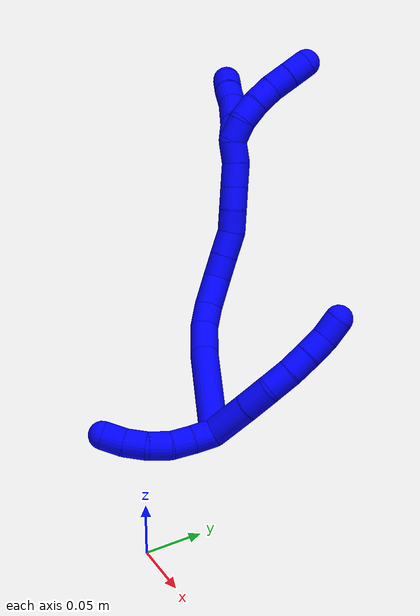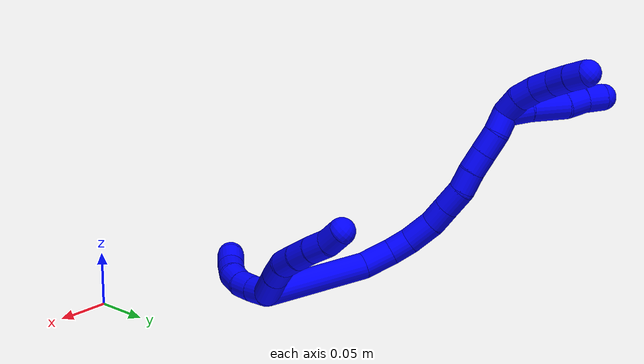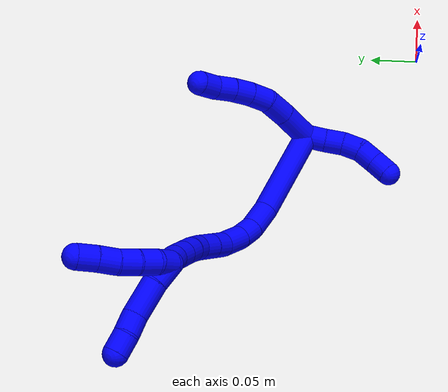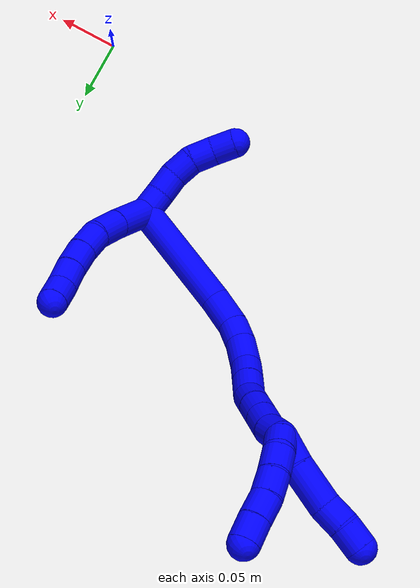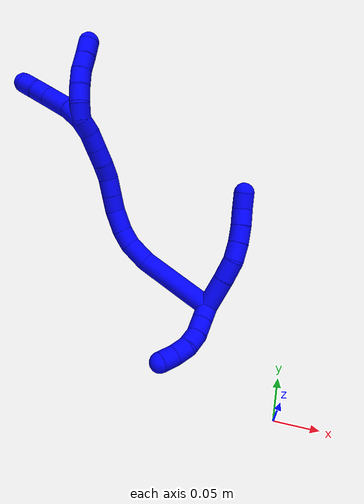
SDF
<sdf version="1.7">
 <world name="default">
  <model name="1">
   <static>0</static>
   <link name="1">
    <collision name="collision-cylinder-e_1_2_8">
     <pose>0.01099 0.010797 0.012185 -0.725068 0.593794 -0.231052</pose>
     <geometry><cylinder><radius>0.0125</radius><length>0.039284</length></cylinder></geometry>
     <surface>
      <friction><ode><mu>1.16</mu><mu2>1.16</mu2><slip1>0</slip1><slip2>0</slip2></ode></friction>
      <contact><ode><kp>1e+06</kp><kd>1</kd><max_vel>0</max_vel><min_depth>0.001</min_depth></ode></contact>
     </surface>
    </collision>
    <visual name="visual-cylinder-e_1_2_8">
     <pose>0.01099 0.010797 0.012185 -0.725068 0.593794 -0.231052</pose>
     <geometry><cylinder><radius>0.0125</radius><length>0.039284</length></cylinder></geometry>
     <material><ambient>0 0 1 1</ambient></material>
    </visual>
    <collision name="collision-cylinder-e_2_8_9">
     <pose>0.02879 0.028979 0.033014 -0.707017 0.539625 -0.203399</pose>
     <geometry><cylinder><radius>0.0125</radius><length>0.026507</length></cylinder></geometry>
     <surface>
      <friction><ode><mu>1.16</mu><mu2>1.16</mu2><slip1>0</slip1><slip2>0</slip2></ode></friction>
      <contact><ode><kp>1e+06</kp><kd>1</kd><max_vel>0</max_vel><min_depth>0.001</min_depth></ode></contact>
     </surface>
    </collision>
    <visual name="visual-cylinder-e_2_8_9">
     <pose>0.02879 0.028979 0.033014 -0.707017 0.539625 -0.203399</pose>
     <geometry><cylinder><radius>0.0125</radius><length>0.026507</length></cylinder></geometry>
     <material><ambient>0 0 1 1</ambient></material>
    </visual>
    <collision name="collision-cylinder-e_3_9_10">
     <pose>0.038184 0.043414 0.049789 -0.714373 0.235681 -0.088307</pose>
     <geometry><cylinder><radius>0.0125</radius><length>0.022133</length></cylinder></geometry>
     <surface>
      <friction><ode><mu>1.16</mu><mu2>1.16</mu2><slip1>0</slip1><slip2>0</slip2></ode></friction>
      <contact><ode><kp>1e+06</kp><kd>1</kd><max_vel>0</max_vel><min_depth>0.001</min_depth></ode></contact>
     </surface>
    </collision>
    <visual name="visual-cylinder-e_3_9_10">
     <pose>0.038184 0.043414 0.049789 -0.714373 0.235681 -0.088307</pose>
     <geometry><cylinder><radius>0.0125</radius><length>0.022133</length></cylinder></geometry>
     <material><ambient>0 0 1 1</ambient></material>
    </visual>
    <collision name="collision-cylinder-e_4_10_11">
     <pose>0.042317 0.056634 0.066259 -0.636895 0.14825 -0.048953</pose>
     <geometry><cylinder><radius>0.0125</radius><length>0.020981</length></cylinder></geometry>
     <surface>
      <friction><ode><mu>1.16</mu><mu2>1.16</mu2><slip1>0</slip1><slip2>0</slip2></ode></friction>
      <contact><ode><kp>1e+06</kp><kd>1</kd><max_vel>0</max_vel><min_depth>0.001</min_depth></ode></contact>
     </surface>
    </collision>
    <visual name="visual-cylinder-e_4_10_11">
     <pose>0.042317 0.056634 0.066259 -0.636895 0.14825 -0.048953</pose>
     <geometry><cylinder><radius>0.0125</radius><length>0.020981</length></cylinder></geometry>
     <material><ambient>0 0 1 1</ambient></material>
    </visual>
    <collision name="collision-cylinder-e_5_11_12">
     <pose>0.044501 0.068709 0.08309 -0.607726 0.061271 -0.019218</pose>
     <geometry><cylinder><radius>0.0125</radius><length>0.020721</length></cylinder></geometry>
     <surface>
      <friction><ode><mu>1.16</mu><mu2>1.16</mu2><slip1>0</slip1><slip2>0</slip2></ode></friction>
      <contact><ode><kp>1e+06</kp><kd>1</kd><max_vel>0</max_vel><min_depth>0.001</min_depth></ode></contact>
     </surface>
    </collision>
    <visual name="visual-cylinder-e_5_11_12">
     <pose>0.044501 0.068709 0.08309 -0.607726 0.061271 -0.019218</pose>
     <geometry><cylinder><radius>0.0125</radius><length>0.020721</length></cylinder></geometry>
     <material><ambient>0 0 1 1</ambient></material>
    </visual>
    <collision name="collision-cylinder-e_6_12_6">
     <pose>0.047618 0.078986 0.100439 -0.458438 0.246212 -0.057722</pose>
     <geometry><cylinder><radius>0.0125</radius><length>0.020375</length></cylinder></geometry>
     <surface>
      <friction><ode><mu>1.16</mu><mu2>1.16</mu2><slip1>0</slip1><slip2>0</slip2></ode></friction>
      <contact><ode><kp>1e+06</kp><kd>1</kd><max_vel>0</max_vel><min_depth>0.001</min_depth></ode></contact>
     </surface>
    </collision>
    <visual name="visual-cylinder-e_6_12_6">
     <pose>0.047618 0.078986 0.100439 -0.458438 0.246212 -0.057722</pose>
     <geometry><cylinder><radius>0.0125</radius><length>0.020375</length></cylinder></geometry>
     <material><ambient>0 0 1 1</ambient></material>
    </visual>
    <collision name="collision-cylinder-e_1_2_13">
     <pose>0.000422 -0.008786 -0.004757 2.067 0.042206 0.070825</pose>
     <geometry><cylinder><radius>0.0125</radius><length>0.02</length></cylinder></geometry>
     <surface>
      <friction><ode><mu>1.16</mu><mu2>1.16</mu2><slip1>0</slip1><slip2>0</slip2></ode></friction>
      <contact><ode><kp>1e+06</kp><kd>1</kd><max_vel>0</max_vel><min_depth>0.001</min_depth></ode></contact>
     </surface>
    </collision>
    <visual name="visual-cylinder-e_1_2_13">
     <pose>0.000422 -0.008786 -0.004757 2.067 0.042206 0.070825</pose>
     <geometry><cylinder><radius>0.0125</radius><length>0.02</length></cylinder></geometry>
     <material><ambient>0 0 1 1</ambient></material>
    </visual>
    <collision name="collision-cylinder-e_2_13_14">
     <pose>0.001968 -0.026555 -0.013762 2.01265 0.112602 0.177551</pose>
     <geometry><cylinder><radius>0.0125</radius><length>0.02</length></cylinder></geometry>
     <surface>
      <friction><ode><mu>1.16</mu><mu2>1.16</mu2><slip1>0</slip1><slip2>0</slip2></ode></friction>
      <contact><ode><kp>1e+06</kp><kd>1</kd><max_vel>0</max_vel><min_depth>0.001</min_depth></ode></contact>
     </surface>
    </collision>
    <visual name="visual-cylinder-e_2_13_14">
     <pose>0.001968 -0.026555 -0.013762 2.01265 0.112602 0.177551</pose>
     <geometry><cylinder><radius>0.0125</radius><length>0.02</length></cylinder></geometry>
     <material><ambient>0 0 1 1</ambient></material>
    </visual>
    <collision name="collision-cylinder-e_3_14_15">
     <pose>0.003328 -0.045348 -0.01993 1.76388 0.02372 0.028807</pose>
     <geometry><cylinder><radius>0.0125</radius><length>0.02</length></cylinder></geometry>
     <surface>
      <friction><ode><mu>1.16</mu><mu2>1.16</mu2><slip1>0</slip1><slip2>0</slip2></ode></friction>
      <contact><ode><kp>1e+06</kp><kd>1</kd><max_vel>0</max_vel><min_depth>0.001</min_depth></ode></contact>
     </surface>
    </collision>
    <visual name="visual-cylinder-e_3_14_15">
     <pose>0.003328 -0.045348 -0.01993 1.76388 0.02372 0.028807</pose>
     <geometry><cylinder><radius>0.0125</radius><length>0.02</length></cylinder></geometry>
     <material><ambient>0 0 1 1</ambient></material>
    </visual>
    <collision name="collision-cylinder-e_4_15_16">
     <pose>0.001082 -0.064846 -0.021939 1.58024 -0.250962 -0.253319</pose>
     <geometry><cylinder><radius>0.0125</radius><length>0.02</length></cylinder></geometry>
     <surface>
      <friction><ode><mu>1.16</mu><mu2>1.16</mu2><slip1>0</slip1><slip2>0</slip2></ode></friction>
      <contact><ode><kp>1e+06</kp><kd>1</kd><max_vel>0</max_vel><min_depth>0.001</min_depth></ode></contact>
     </surface>
    </collision>
    <visual name="visual-cylinder-e_4_15_16">
     <pose>0.001082 -0.064846 -0.021939 1.58024 -0.250962 -0.253319</pose>
     <geometry><cylinder><radius>0.0125</radius><length>0.02</length></cylinder></geometry>
     <material><ambient>0 0 1 1</ambient></material>
    </visual>
    <collision name="collision-cylinder-e_5_16_5">
     <pose>-0.003138 -0.084238 -0.020361 1.40037 -0.17452 -0.147159</pose>
     <geometry><cylinder><radius>0.0125</radius><length>0.02</length></cylinder></geometry>
     <surface>
      <friction><ode><mu>1.16</mu><mu2>1.16</mu2><slip1>0</slip1><slip2>0</slip2></ode></friction>
      <contact><ode><kp>1e+06</kp><kd>1</kd><max_vel>0</max_vel><min_depth>0.001</min_depth></ode></contact>
     </surface>
    </collision>
    <visual name="visual-cylinder-e_5_16_5">
     <pose>-0.003138 -0.084238 -0.020361 1.40037 -0.17452 -0.147159</pose>
     <geometry><cylinder><radius>0.0125</radius><length>0.02</length></cylinder></geometry>
     <material><ambient>0 0 1 1</ambient></material>
    </visual>
    <collision name="collision-cylinder-e_1_2_17">
     <pose>-0.031256 -0.005661 0.03668 0.15312 -0.699933 -0.055982</pose>
     <geometry><cylinder><radius>0.0125</radius><length>0.097045</length></cylinder></geometry>
     <surface>
      <friction><ode><mu>1.16</mu><mu2>1.16</mu2><slip1>0</slip1><slip2>0</slip2></ode></friction>
      <contact><ode><kp>1e+06</kp><kd>1</kd><max_vel>0</max_vel><min_depth>0.001</min_depth></ode></contact>
     </surface>
    </collision>
    <visual name="visual-cylinder-e_1_2_17">
     <pose>-0.031256 -0.005661 0.03668 0.15312 -0.699933 -0.055982</pose>
     <geometry><cylinder><radius>0.0125</radius><length>0.097045</length></cylinder></geometry>
     <material><ambient>0 0 1 1</ambient></material>
    </visual>
    <collision name="collision-cylinder-e_2_17_18">
     <pose>-0.068812 -0.01266 0.086407 0.10221 -0.447725 -0.02329</pose>
     <geometry><cylinder><radius>0.0125</radius><length>0.0291</length></cylinder></geometry>
     <surface>
      <friction><ode><mu>1.16</mu><mu2>1.16</mu2><slip1>0</slip1><slip2>0</slip2></ode></friction>
      <contact><ode><kp>1e+06</kp><kd>1</kd><max_vel>0</max_vel><min_depth>0.001</min_depth></ode></contact>
     </surface>
    </collision>
    <visual name="visual-cylinder-e_2_17_18">
     <pose>-0.068812 -0.01266 0.086407 0.10221 -0.447725 -0.02329</pose>
     <geometry><cylinder><radius>0.0125</radius><length>0.0291</length></cylinder></geometry>
     <material><ambient>0 0 1 1</ambient></material>
    </visual>
    <collision name="collision-cylinder-e_3_18_19">
     <pose>-0.077564 -0.013414 0.109363 -0.058833 -0.242262 0.007164</pose>
     <geometry><cylinder><radius>0.0125</radius><length>0.020449</length></cylinder></geometry>
     <surface>
      <friction><ode><mu>1.16</mu><mu2>1.16</mu2><slip1>0</slip1><slip2>0</slip2></ode></friction>
      <contact><ode><kp>1e+06</kp><kd>1</kd><max_vel>0</max_vel><min_depth>0.001</min_depth></ode></contact>
     </surface>
    </collision>
    <visual name="visual-cylinder-e_3_18_19">
     <pose>-0.077564 -0.013414 0.109363 -0.058833 -0.242262 0.007164</pose>
     <geometry><cylinder><radius>0.0125</radius><length>0.020449</length></cylinder></geometry>
     <material><ambient>0 0 1 1</ambient></material>
    </visual>
    <collision name="collision-cylinder-e_4_19_20">
     <pose>-0.080627 -0.011053 0.132975 -0.128996 -0.044151 0.002852</pose>
     <geometry><cylinder><radius>0.0125</radius><length>0.027664</length></cylinder></geometry>
     <surface>
      <friction><ode><mu>1.16</mu><mu2>1.16</mu2><slip1>0</slip1><slip2>0</slip2></ode></friction>
      <contact><ode><kp>1e+06</kp><kd>1</kd><max_vel>0</max_vel><min_depth>0.001</min_depth></ode></contact>
     </surface>
    </collision>
    <visual name="visual-cylinder-e_4_19_20">
     <pose>-0.080627 -0.011053 0.132975 -0.128996 -0.044151 0.002852</pose>
     <geometry><cylinder><radius>0.0125</radius><length>0.027664</length></cylinder></geometry>
     <material><ambient>0 0 1 1</ambient></material>
    </visual>
    <collision name="collision-cylinder-e_5_20_21">
     <pose>-0.079345 -0.008122 0.156788 -0.113622 0.18393 -0.01049</pose>
     <geometry><cylinder><radius>0.0125</radius><length>0.020698</length></cylinder></geometry>
     <surface>
      <friction><ode><mu>1.16</mu><mu2>1.16</mu2><slip1>0</slip1><slip2>0</slip2></ode></friction>
      <contact><ode><kp>1e+06</kp><kd>1</kd><max_vel>0</max_vel><min_depth>0.001</min_depth></ode></contact>
     </surface>
    </collision>
    <visual name="visual-cylinder-e_5_20_21">
     <pose>-0.079345 -0.008122 0.156788 -0.113622 0.18393 -0.01049</pose>
     <geometry><cylinder><radius>0.0125</radius><length>0.020698</length></cylinder></geometry>
     <material><ambient>0 0 1 1</ambient></material>
    </visual>
    <collision name="collision-cylinder-e_6_21_22">
     <pose>-0.075441 -0.005575 0.177951 -0.12541 0.178593 -0.011243</pose>
     <geometry><cylinder><radius>0.0125</radius><length>0.022643</length></cylinder></geometry>
     <surface>
      <friction><ode><mu>1.16</mu><mu2>1.16</mu2><slip1>0</slip1><slip2>0</slip2></ode></friction>
      <contact><ode><kp>1e+06</kp><kd>1</kd><max_vel>0</max_vel><min_depth>0.001</min_depth></ode></contact>
     </surface>
    </collision>
    <visual name="visual-cylinder-e_6_21_22">
     <pose>-0.075441 -0.005575 0.177951 -0.12541 0.178593 -0.011243</pose>
     <geometry><cylinder><radius>0.0125</radius><length>0.022643</length></cylinder></geometry>
     <material><ambient>0 0 1 1</ambient></material>
    </visual>
    <collision name="collision-cylinder-e_7_22_23">
     <pose>-0.070546 -0.00558 0.198652 0.144024 0.287605 0.02089</pose>
     <geometry><cylinder><radius>0.0125</radius><length>0.020333</length></cylinder></geometry>
     <surface>
      <friction><ode><mu>1.16</mu><mu2>1.16</mu2><slip1>0</slip1><slip2>0</slip2></ode></friction>
      <contact><ode><kp>1e+06</kp><kd>1</kd><max_vel>0</max_vel><min_depth>0.001</min_depth></ode></contact>
     </surface>
    </collision>
    <visual name="visual-cylinder-e_7_22_23">
     <pose>-0.070546 -0.00558 0.198652 0.144024 0.287605 0.02089</pose>
     <geometry><cylinder><radius>0.0125</radius><length>0.020333</length></cylinder></geometry>
     <material><ambient>0 0 1 1</ambient></material>
    </visual>
    <collision name="collision-cylinder-e_8_23_24">
     <pose>-0.06583 -0.00829 0.218251 0.130957 0.180485 0.011867</pose>
     <geometry><cylinder><radius>0.0125</radius><length>0.020405</length></cylinder></geometry>
     <surface>
      <friction><ode><mu>1.16</mu><mu2>1.16</mu2><slip1>0</slip1><slip2>0</slip2></ode></friction>
      <contact><ode><kp>1e+06</kp><kd>1</kd><max_vel>0</max_vel><min_depth>0.001</min_depth></ode></contact>
     </surface>
    </collision>
    <visual name="visual-cylinder-e_8_23_24">
     <pose>-0.06583 -0.00829 0.218251 0.130957 0.180485 0.011867</pose>
     <geometry><cylinder><radius>0.0125</radius><length>0.020405</length></cylinder></geometry>
     <material><ambient>0 0 1 1</ambient></material>
    </visual>
    <collision name="collision-cylinder-e_9_24_25">
     <pose>-0.062057 -0.010927 0.238758 0.124964 0.180559 0.011327</pose>
     <geometry><cylinder><radius>0.0125</radius><length>0.02163</length></cylinder></geometry>
     <surface>
      <friction><ode><mu>1.16</mu><mu2>1.16</mu2><slip1>0</slip1><slip2>0</slip2></ode></friction>
      <contact><ode><kp>1e+06</kp><kd>1</kd><max_vel>0</max_vel><min_depth>0.001</min_depth></ode></contact>
     </surface>
    </collision>
    <visual name="visual-cylinder-e_9_24_25">
     <pose>-0.062057 -0.010927 0.238758 0.124964 0.180559 0.011327</pose>
     <geometry><cylinder><radius>0.0125</radius><length>0.02163</length></cylinder></geometry>
     <material><ambient>0 0 1 1</ambient></material>
    </visual>
    <collision name="collision-cylinder-e_10_25_1">
     <pose>-0.058136 -0.015628 0.258536 0.35087 0.19884 0.035359</pose>
     <geometry><cylinder><radius>0.0125</radius><length>0.020034</length></cylinder></geometry>
     <surface>
      <friction><ode><mu>1.16</mu><mu2>1.16</mu2><slip1>0</slip1><slip2>0</slip2></ode></friction>
      <contact><ode><kp>1e+06</kp><kd>1</kd><max_vel>0</max_vel><min_depth>0.001</min_depth></ode></contact>
     </surface>
    </collision>
    <visual name="visual-cylinder-e_10_25_1">
     <pose>-0.058136 -0.015628 0.258536 0.35087 0.19884 0.035359</pose>
     <geometry><cylinder><radius>0.0125</radius><length>0.020034</length></cylinder></geometry>
     <material><ambient>0 0 1 1</ambient></material>
    </visual>
    <collision name="collision-cylinder-e_1_1_26">
     <pose>-0.063693 -0.018529 0.276853 -0.052066 -0.691193 0.01875</pose>
     <geometry><cylinder><radius>0.0125</radius><length>0.023644</length></cylinder></geometry>
     <surface>
      <friction><ode><mu>1.16</mu><mu2>1.16</mu2><slip1>0</slip1><slip2>0</slip2></ode></friction>
      <contact><ode><kp>1e+06</kp><kd>1</kd><max_vel>0</max_vel><min_depth>0.001</min_depth></ode></contact>
     </surface>
    </collision>
    <visual name="visual-cylinder-e_1_1_26">
     <pose>-0.063693 -0.018529 0.276853 -0.052066 -0.691193 0.01875</pose>
     <geometry><cylinder><radius>0.0125</radius><length>0.023644</length></cylinder></geometry>
     <material><ambient>0 0 1 1</ambient></material>
    </visual>
    <collision name="collision-cylinder-e_2_26_27">
     <pose>-0.084809 -0.018726 0.29795 0.055852 -0.84629 -0.025158</pose>
     <geometry><cylinder><radius>0.0125</radius><length>0.036271</length></cylinder></geometry>
     <surface>
      <friction><ode><mu>1.16</mu><mu2>1.16</mu2><slip1>0</slip1><slip2>0</slip2></ode></friction>
      <contact><ode><kp>1e+06</kp><kd>1</kd><max_vel>0</max_vel><min_depth>0.001</min_depth></ode></contact>
     </surface>
    </collision>
    <visual name="visual-cylinder-e_2_26_27">
     <pose>-0.084809 -0.018726 0.29795 0.055852 -0.84629 -0.025158</pose>
     <geometry><cylinder><radius>0.0125</radius><length>0.036271</length></cylinder></geometry>
     <material><ambient>0 0 1 1</ambient></material>
    </visual>
    <collision name="collision-cylinder-e_3_27_28">
     <pose>-0.104733 -0.021557 0.317425 0.281279 -0.684067 -0.100723</pose>
     <geometry><cylinder><radius>0.0125</radius><length>0.020077</length></cylinder></geometry>
     <surface>
      <friction><ode><mu>1.16</mu><mu2>1.16</mu2><slip1>0</slip1><slip2>0</slip2></ode></friction>
      <contact><ode><kp>1e+06</kp><kd>1</kd><max_vel>0</max_vel><min_depth>0.001</min_depth></ode></contact>
     </surface>
    </collision>
    <visual name="visual-cylinder-e_3_27_28">
     <pose>-0.104733 -0.021557 0.317425 0.281279 -0.684067 -0.100723</pose>
     <geometry><cylinder><radius>0.0125</radius><length>0.020077</length></cylinder></geometry>
     <material><ambient>0 0 1 1</ambient></material>
    </visual>
    <collision name="collision-cylinder-e_4_28_4">
     <pose>-0.118393 -0.024524 0.331675 0.118702 -0.82021 -0.051655</pose>
     <geometry><cylinder><radius>0.0125</radius><length>0.020009</length></cylinder></geometry>
     <surface>
      <friction><ode><mu>1.16</mu><mu2>1.16</mu2><slip1>0</slip1><slip2>0</slip2></ode></friction>
      <contact><ode><kp>1e+06</kp><kd>1</kd><max_vel>0</max_vel><min_depth>0.001</min_depth></ode></contact>
     </surface>
    </collision>
    <visual name="visual-cylinder-e_4_28_4">
     <pose>-0.118393 -0.024524 0.331675 0.118702 -0.82021 -0.051655</pose>
     <geometry><cylinder><radius>0.0125</radius><length>0.020009</length></cylinder></geometry>
     <material><ambient>0 0 1 1</ambient></material>
    </visual>
    <collision name="collision-cylinder-e_1_1_29">
     <pose>-0.053554 -0.016558 0.277098 -0.256031 0.263327 -0.034089</pose>
     <geometry><cylinder><radius>0.0125</radius><length>0.02</length></cylinder></geometry>
     <surface>
      <friction><ode><mu>1.16</mu><mu2>1.16</mu2><slip1>0</slip1><slip2>0</slip2></ode></friction>
      <contact><ode><kp>1e+06</kp><kd>1</kd><max_vel>0</max_vel><min_depth>0.001</min_depth></ode></contact>
     </surface>
    </collision>
    <visual name="visual-cylinder-e_1_1_29">
     <pose>-0.053554 -0.016558 0.277098 -0.256031 0.263327 -0.034089</pose>
     <geometry><cylinder><radius>0.0125</radius><length>0.02</length></cylinder></geometry>
     <material><ambient>0 0 1 1</ambient></material>
    </visual>
    <collision name="collision-cylinder-e_2_29_30">
     <pose>-0.050459 -0.009434 0.295262 -0.487545 0.049296 -0.012263</pose>
     <geometry><cylinder><radius>0.0125</radius><length>0.02</length></cylinder></geometry>
     <surface>
      <friction><ode><mu>1.16</mu><mu2>1.16</mu2><slip1>0</slip1><slip2>0</slip2></ode></friction>
      <contact><ode><kp>1e+06</kp><kd>1</kd><max_vel>0</max_vel><min_depth>0.001</min_depth></ode></contact>
     </surface>
    </collision>
    <visual name="visual-cylinder-e_2_29_30">
     <pose>-0.050459 -0.009434 0.295262 -0.487545 0.049296 -0.012263</pose>
     <geometry><cylinder><radius>0.0125</radius><length>0.02</length></cylinder></geometry>
     <material><ambient>0 0 1 1</ambient></material>
    </visual>
    <collision name="collision-cylinder-e_3_30_31">
     <pose>-0.0501 0.001052 0.312226 -0.619659 -0.013375 0.004282</pose>
     <geometry><cylinder><radius>0.0125</radius><length>0.02</length></cylinder></geometry>
     <surface>
      <friction><ode><mu>1.16</mu><mu2>1.16</mu2><slip1>0</slip1><slip2>0</slip2></ode></friction>
      <contact><ode><kp>1e+06</kp><kd>1</kd><max_vel>0</max_vel><min_depth>0.001</min_depth></ode></contact>
     </surface>
    </collision>
    <visual name="visual-cylinder-e_3_30_31">
     <pose>-0.0501 0.001052 0.312226 -0.619659 -0.013375 0.004282</pose>
     <geometry><cylinder><radius>0.0125</radius><length>0.02</length></cylinder></geometry>
     <material><ambient>0 0 1 1</ambient></material>
    </visual>
    <collision name="collision-cylinder-e_4_31_32">
     <pose>-0.049512 0.01372 0.327605 -0.758629 0.072183 -0.028784</pose>
     <geometry><cylinder><radius>0.0125</radius><length>0.02</length></cylinder></geometry>
     <surface>
      <friction><ode><mu>1.16</mu><mu2>1.16</mu2><slip1>0</slip1><slip2>0</slip2></ode></friction>
      <contact><ode><kp>1e+06</kp><kd>1</kd><max_vel>0</max_vel><min_depth>0.001</min_depth></ode></contact>
     </surface>
    </collision>
    <visual name="visual-cylinder-e_4_31_32">
     <pose>-0.049512 0.01372 0.327605 -0.758629 0.072183 -0.028784</pose>
     <geometry><cylinder><radius>0.0125</radius><length>0.02</length></cylinder></geometry>
     <material><ambient>0 0 1 1</ambient></material>
    </visual>
    <collision name="collision-cylinder-e_5_32_3">
     <pose>-0.048738 0.027391 0.342167 -0.749132 0.005321 -0.002092</pose>
     <geometry><cylinder><radius>0.0125</radius><length>0.02</length></cylinder></geometry>
     <surface>
      <friction><ode><mu>1.16</mu><mu2>1.16</mu2><slip1>0</slip1><slip2>0</slip2></ode></friction>
      <contact><ode><kp>1e+06</kp><kd>1</kd><max_vel>0</max_vel><min_depth>0.001</min_depth></ode></contact>
     </surface>
    </collision>
    <visual name="visual-cylinder-e_5_32_3">
     <pose>-0.048738 0.027391 0.342167 -0.749132 0.005321 -0.002092</pose>
     <geometry><cylinder><radius>0.0125</radius><length>0.02</length></cylinder></geometry>
     <material><ambient>0 0 1 1</ambient></material>
    </visual>
    <collision name="collision-sphere-3">
     <pose>-0.048685 0.034201 0.34949 0 -0 0</pose>
     <geometry><sphere><radius>0.0125</radius></sphere></geometry>
     <surface>
      <friction><ode><mu>1.16</mu><mu2>1.16</mu2><slip1>0</slip1><slip2>0</slip2></ode></friction>
      <contact><ode><kp>1e+06</kp><kd>1</kd><max_vel>0</max_vel><min_depth>0.001</min_depth></ode></contact>
     </surface>
    </collision>
    <visual name="visual-sphere-3">
     <pose>-0.048685 0.034201 0.34949 0 -0 0</pose>
     <geometry><sphere><radius>0.0125</radius></sphere></geometry>
     <material><ambient>0 0 1 1</ambient></material>
    </visual>
    <collision name="collision-sphere-32">
     <pose>-0.048791 0.020581 0.334844 0 -0 0</pose>
     <geometry><sphere><radius>0.0125</radius></sphere></geometry>
     <surface>
      <friction><ode><mu>1.16</mu><mu2>1.16</mu2><slip1>0</slip1><slip2>0</slip2></ode></friction>
      <contact><ode><kp>1e+06</kp><kd>1</kd><max_vel>0</max_vel><min_depth>0.001</min_depth></ode></contact>
     </surface>
    </collision>
    <visual name="visual-sphere-32">
     <pose>-0.048791 0.020581 0.334844 0 -0 0</pose>
     <geometry><sphere><radius>0.0125</radius></sphere></geometry>
     <material><ambient>0 0 1 1</ambient></material>
    </visual>
    <collision name="collision-sphere-31">
     <pose>-0.050233 0.006859 0.320366 0 -0 0</pose>
     <geometry><sphere><radius>0.0125</radius></sphere></geometry>
     <surface>
      <friction><ode><mu>1.16</mu><mu2>1.16</mu2><slip1>0</slip1><slip2>0</slip2></ode></friction>
      <contact><ode><kp>1e+06</kp><kd>1</kd><max_vel>0</max_vel><min_depth>0.001</min_depth></ode></contact>
     </surface>
    </collision>
    <visual name="visual-sphere-31">
     <pose>-0.050233 0.006859 0.320366 0 -0 0</pose>
     <geometry><sphere><radius>0.0125</radius></sphere></geometry>
     <material><ambient>0 0 1 1</ambient></material>
    </visual>
    <collision name="collision-sphere-30">
     <pose>-0.049966 -0.004755 0.304086 0 -0 0</pose>
     <geometry><sphere><radius>0.0125</radius></sphere></geometry>
     <surface>
      <friction><ode><mu>1.16</mu><mu2>1.16</mu2><slip1>0</slip1><slip2>0</slip2></ode></friction>
      <contact><ode><kp>1e+06</kp><kd>1</kd><max_vel>0</max_vel><min_depth>0.001</min_depth></ode></contact>
     </surface>
    </collision>
    <visual name="visual-sphere-30">
     <pose>-0.049966 -0.004755 0.304086 0 -0 0</pose>
     <geometry><sphere><radius>0.0125</radius></sphere></geometry>
     <material><ambient>0 0 1 1</ambient></material>
    </visual>
    <collision name="collision-sphere-29">
     <pose>-0.050951 -0.014113 0.286438 0 -0 0</pose>
     <geometry><sphere><radius>0.0125</radius></sphere></geometry>
     <surface>
      <friction><ode><mu>1.16</mu><mu2>1.16</mu2><slip1>0</slip1><slip2>0</slip2></ode></friction>
      <contact><ode><kp>1e+06</kp><kd>1</kd><max_vel>0</max_vel><min_depth>0.001</min_depth></ode></contact>
     </surface>
    </collision>
    <visual name="visual-sphere-29">
     <pose>-0.050951 -0.014113 0.286438 0 -0 0</pose>
     <geometry><sphere><radius>0.0125</radius></sphere></geometry>
     <material><ambient>0 0 1 1</ambient></material>
    </visual>
    <collision name="collision-sphere-4">
     <pose>-0.125709 -0.025333 0.33845 0 -0 0</pose>
     <geometry><sphere><radius>0.0125</radius></sphere></geometry>
     <surface>
      <friction><ode><mu>1.16</mu><mu2>1.16</mu2><slip1>0</slip1><slip2>0</slip2></ode></friction>
      <contact><ode><kp>1e+06</kp><kd>1</kd><max_vel>0</max_vel><min_depth>0.001</min_depth></ode></contact>
     </surface>
    </collision>
    <visual name="visual-sphere-4">
     <pose>-0.125709 -0.025333 0.33845 0 -0 0</pose>
     <geometry><sphere><radius>0.0125</radius></sphere></geometry>
     <material><ambient>0 0 1 1</ambient></material>
    </visual>
    <collision name="collision-sphere-28">
     <pose>-0.111077 -0.023716 0.324899 0 -0 0</pose>
     <geometry><sphere><radius>0.0125</radius></sphere></geometry>
     <surface>
      <friction><ode><mu>1.16</mu><mu2>1.16</mu2><slip1>0</slip1><slip2>0</slip2></ode></friction>
      <contact><ode><kp>1e+06</kp><kd>1</kd><max_vel>0</max_vel><min_depth>0.001</min_depth></ode></contact>
     </surface>
    </collision>
    <visual name="visual-sphere-28">
     <pose>-0.111077 -0.023716 0.324899 0 -0 0</pose>
     <geometry><sphere><radius>0.0125</radius></sphere></geometry>
     <material><ambient>0 0 1 1</ambient></material>
    </visual>
    <collision name="collision-sphere-27">
     <pose>-0.09839 -0.019397 0.309951 0 -0 0</pose>
     <geometry><sphere><radius>0.0125</radius></sphere></geometry>
     <surface>
      <friction><ode><mu>1.16</mu><mu2>1.16</mu2><slip1>0</slip1><slip2>0</slip2></ode></friction>
      <contact><ode><kp>1e+06</kp><kd>1</kd><max_vel>0</max_vel><min_depth>0.001</min_depth></ode></contact>
     </surface>
    </collision>
    <visual name="visual-sphere-27">
     <pose>-0.09839 -0.019397 0.309951 0 -0 0</pose>
     <geometry><sphere><radius>0.0125</radius></sphere></geometry>
     <material><ambient>0 0 1 1</ambient></material>
    </visual>
    <collision name="collision-sphere-26">
     <pose>-0.071229 -0.018055 0.285949 0 -0 0</pose>
     <geometry><sphere><radius>0.0125</radius></sphere></geometry>
     <surface>
      <friction><ode><mu>1.16</mu><mu2>1.16</mu2><slip1>0</slip1><slip2>0</slip2></ode></friction>
      <contact><ode><kp>1e+06</kp><kd>1</kd><max_vel>0</max_vel><min_depth>0.001</min_depth></ode></contact>
     </surface>
    </collision>
    <visual name="visual-sphere-26">
     <pose>-0.071229 -0.018055 0.285949 0 -0 0</pose>
     <geometry><sphere><radius>0.0125</radius></sphere></geometry>
     <material><ambient>0 0 1 1</ambient></material>
    </visual>
    <collision name="collision-sphere-1">
     <pose>-0.056157 -0.019003 0.267757 0 -0 0</pose>
     <geometry><sphere><radius>0.0125</radius></sphere></geometry>
     <surface>
      <friction><ode><mu>1.16</mu><mu2>1.16</mu2><slip1>0</slip1><slip2>0</slip2></ode></friction>
      <contact><ode><kp>1e+06</kp><kd>1</kd><max_vel>0</max_vel><min_depth>0.001</min_depth></ode></contact>
     </surface>
    </collision>
    <visual name="visual-sphere-1">
     <pose>-0.056157 -0.019003 0.267757 0 -0 0</pose>
     <geometry><sphere><radius>0.0125</radius></sphere></geometry>
     <material><ambient>0 0 1 1</ambient></material>
    </visual>
    <collision name="collision-sphere-25">
     <pose>-0.060115 -0.012253 0.249314 0 -0 0</pose>
     <geometry><sphere><radius>0.0125</radius></sphere></geometry>
     <surface>
      <friction><ode><mu>1.16</mu><mu2>1.16</mu2><slip1>0</slip1><slip2>0</slip2></ode></friction>
      <contact><ode><kp>1e+06</kp><kd>1</kd><max_vel>0</max_vel><min_depth>0.001</min_depth></ode></contact>
     </surface>
    </collision>
    <visual name="visual-sphere-25">
     <pose>-0.060115 -0.012253 0.249314 0 -0 0</pose>
     <geometry><sphere><radius>0.0125</radius></sphere></geometry>
     <material><ambient>0 0 1 1</ambient></material>
    </visual>
    <collision name="collision-sphere-24">
     <pose>-0.063999 -0.009601 0.228202 0 -0 0</pose>
     <geometry><sphere><radius>0.0125</radius></sphere></geometry>
     <surface>
      <friction><ode><mu>1.16</mu><mu2>1.16</mu2><slip1>0</slip1><slip2>0</slip2></ode></friction>
      <contact><ode><kp>1e+06</kp><kd>1</kd><max_vel>0</max_vel><min_depth>0.001</min_depth></ode></contact>
     </surface>
    </collision>
    <visual name="visual-sphere-24">
     <pose>-0.063999 -0.009601 0.228202 0 -0 0</pose>
     <geometry><sphere><radius>0.0125</radius></sphere></geometry>
     <material><ambient>0 0 1 1</ambient></material>
    </visual>
    <collision name="collision-sphere-23">
     <pose>-0.067662 -0.00698 0.2083 0 -0 0</pose>
     <geometry><sphere><radius>0.0125</radius></sphere></geometry>
     <surface>
      <friction><ode><mu>1.16</mu><mu2>1.16</mu2><slip1>0</slip1><slip2>0</slip2></ode></friction>
      <contact><ode><kp>1e+06</kp><kd>1</kd><max_vel>0</max_vel><min_depth>0.001</min_depth></ode></contact>
     </surface>
    </collision>
    <visual name="visual-sphere-23">
     <pose>-0.067662 -0.00698 0.2083 0 -0 0</pose>
     <geometry><sphere><radius>0.0125</radius></sphere></geometry>
     <material><ambient>0 0 1 1</ambient></material>
    </visual>
    <collision name="collision-sphere-22">
     <pose>-0.073429 -0.004181 0.189004 0 -0 0</pose>
     <geometry><sphere><radius>0.0125</radius></sphere></geometry>
     <surface>
      <friction><ode><mu>1.16</mu><mu2>1.16</mu2><slip1>0</slip1><slip2>0</slip2></ode></friction>
      <contact><ode><kp>1e+06</kp><kd>1</kd><max_vel>0</max_vel><min_depth>0.001</min_depth></ode></contact>
     </surface>
    </collision>
    <visual name="visual-sphere-22">
     <pose>-0.073429 -0.004181 0.189004 0 -0 0</pose>
     <geometry><sphere><radius>0.0125</radius></sphere></geometry>
     <material><ambient>0 0 1 1</ambient></material>
    </visual>
    <collision name="collision-sphere-21">
     <pose>-0.077452 -0.006968 0.166897 0 -0 0</pose>
     <geometry><sphere><radius>0.0125</radius></sphere></geometry>
     <surface>
      <friction><ode><mu>1.16</mu><mu2>1.16</mu2><slip1>0</slip1><slip2>0</slip2></ode></friction>
      <contact><ode><kp>1e+06</kp><kd>1</kd><max_vel>0</max_vel><min_depth>0.001</min_depth></ode></contact>
     </surface>
    </collision>
    <visual name="visual-sphere-21">
     <pose>-0.077452 -0.006968 0.166897 0 -0 0</pose>
     <geometry><sphere><radius>0.0125</radius></sphere></geometry>
     <material><ambient>0 0 1 1</ambient></material>
    </visual>
    <collision name="collision-sphere-12">
     <pose>0.045135 0.074614 0.091579 0 -0 0</pose>
     <geometry><sphere><radius>0.0125</radius></sphere></geometry>
     <surface>
      <friction><ode><mu>1.16</mu><mu2>1.16</mu2><slip1>0</slip1><slip2>0</slip2></ode></friction>
      <contact><ode><kp>1e+06</kp><kd>1</kd><max_vel>0</max_vel><min_depth>0.001</min_depth></ode></contact>
     </surface>
    </collision>
    <visual name="visual-sphere-12">
     <pose>0.045135 0.074614 0.091579 0 -0 0</pose>
     <geometry><sphere><radius>0.0125</radius></sphere></geometry>
     <material><ambient>0 0 1 1</ambient></material>
    </visual>
    <collision name="collision-sphere-11">
     <pose>0.043867 0.062804 0.074601 0 -0 0</pose>
     <geometry><sphere><radius>0.0125</radius></sphere></geometry>
     <surface>
      <friction><ode><mu>1.16</mu><mu2>1.16</mu2><slip1>0</slip1><slip2>0</slip2></ode></friction>
      <contact><ode><kp>1e+06</kp><kd>1</kd><max_vel>0</max_vel><min_depth>0.001</min_depth></ode></contact>
     </surface>
    </collision>
    <visual name="visual-sphere-11">
     <pose>0.043867 0.062804 0.074601 0 -0 0</pose>
     <geometry><sphere><radius>0.0125</radius></sphere></geometry>
     <material><ambient>0 0 1 1</ambient></material>
    </visual>
    <collision name="collision-sphere-10">
     <pose>0.040768 0.050464 0.057918 0 -0 0</pose>
     <geometry><sphere><radius>0.0125</radius></sphere></geometry>
     <surface>
      <friction><ode><mu>1.16</mu><mu2>1.16</mu2><slip1>0</slip1><slip2>0</slip2></ode></friction>
      <contact><ode><kp>1e+06</kp><kd>1</kd><max_vel>0</max_vel><min_depth>0.001</min_depth></ode></contact>
     </surface>
    </collision>
    <visual name="visual-sphere-10">
     <pose>0.040768 0.050464 0.057918 0 -0 0</pose>
     <geometry><sphere><radius>0.0125</radius></sphere></geometry>
     <material><ambient>0 0 1 1</ambient></material>
    </visual>
    <collision name="collision-sphere-9">
     <pose>0.035599 0.036364 0.041659 0 -0 0</pose>
     <geometry><sphere><radius>0.0125</radius></sphere></geometry>
     <surface>
      <friction><ode><mu>1.16</mu><mu2>1.16</mu2><slip1>0</slip1><slip2>0</slip2></ode></friction>
      <contact><ode><kp>1e+06</kp><kd>1</kd><max_vel>0</max_vel><min_depth>0.001</min_depth></ode></contact>
     </surface>
    </collision>
    <visual name="visual-sphere-9">
     <pose>0.035599 0.036364 0.041659 0 -0 0</pose>
     <geometry><sphere><radius>0.0125</radius></sphere></geometry>
     <material><ambient>0 0 1 1</ambient></material>
    </visual>
    <collision name="collision-sphere-2">
     <geometry><sphere><radius>0.0125</radius></sphere></geometry>
     <surface>
      <friction><ode><mu>1.16</mu><mu2>1.16</mu2><slip1>0</slip1><slip2>0</slip2></ode></friction>
      <contact><ode><kp>1e+06</kp><kd>1</kd><max_vel>0</max_vel><min_depth>0.001</min_depth></ode></contact>
     </surface>
    </collision>
    <visual name="visual-sphere-2">
     <geometry><sphere><radius>0.0125</radius></sphere></geometry>
     <material><ambient>0 0 1 1</ambient></material>
    </visual>
    <collision name="collision-sphere-19">
     <pose>-0.080016 -0.012831 0.119272 0 -0 0</pose>
     <geometry><sphere><radius>0.0125</radius></sphere></geometry>
     <surface>
      <friction><ode><mu>1.16</mu><mu2>1.16</mu2><slip1>0</slip1><slip2>0</slip2></ode></friction>
      <contact><ode><kp>1e+06</kp><kd>1</kd><max_vel>0</max_vel><min_depth>0.001</min_depth></ode></contact>
     </surface>
    </collision>
    <visual name="visual-sphere-19">
     <pose>-0.080016 -0.012831 0.119272 0 -0 0</pose>
     <geometry><sphere><radius>0.0125</radius></sphere></geometry>
     <material><ambient>0 0 1 1</ambient></material>
    </visual>
    <collision name="collision-sphere-8">
     <pose>0.02198 0.021593 0.024369 0 -0 0</pose>
     <geometry><sphere><radius>0.0125</radius></sphere></geometry>
     <surface>
      <friction><ode><mu>1.16</mu><mu2>1.16</mu2><slip1>0</slip1><slip2>0</slip2></ode></friction>
      <contact><ode><kp>1e+06</kp><kd>1</kd><max_vel>0</max_vel><min_depth>0.001</min_depth></ode></contact>
     </surface>
    </collision>
    <visual name="visual-sphere-8">
     <pose>0.02198 0.021593 0.024369 0 -0 0</pose>
     <geometry><sphere><radius>0.0125</radius></sphere></geometry>
     <material><ambient>0 0 1 1</ambient></material>
    </visual>
    <collision name="collision-sphere-6">
     <pose>0.050101 0.083358 0.109299 0 -0 0</pose>
     <geometry><sphere><radius>0.0125</radius></sphere></geometry>
     <surface>
      <friction><ode><mu>1.16</mu><mu2>1.16</mu2><slip1>0</slip1><slip2>0</slip2></ode></friction>
      <contact><ode><kp>1e+06</kp><kd>1</kd><max_vel>0</max_vel><min_depth>0.001</min_depth></ode></contact>
     </surface>
    </collision>
    <visual name="visual-sphere-6">
     <pose>0.050101 0.083358 0.109299 0 -0 0</pose>
     <geometry><sphere><radius>0.0125</radius></sphere></geometry>
     <material><ambient>0 0 1 1</ambient></material>
    </visual>
    <collision name="collision-sphere-13">
     <pose>0.000844 -0.017572 -0.009513 0 -0 0</pose>
     <geometry><sphere><radius>0.0125</radius></sphere></geometry>
     <surface>
      <friction><ode><mu>1.16</mu><mu2>1.16</mu2><slip1>0</slip1><slip2>0</slip2></ode></friction>
      <contact><ode><kp>1e+06</kp><kd>1</kd><max_vel>0</max_vel><min_depth>0.001</min_depth></ode></contact>
     </surface>
    </collision>
    <visual name="visual-sphere-13">
     <pose>0.000844 -0.017572 -0.009513 0 -0 0</pose>
     <geometry><sphere><radius>0.0125</radius></sphere></geometry>
     <material><ambient>0 0 1 1</ambient></material>
    </visual>
    <collision name="collision-sphere-14">
     <pose>0.003091 -0.035537 -0.018011 0 -0 0</pose>
     <geometry><sphere><radius>0.0125</radius></sphere></geometry>
     <surface>
      <friction><ode><mu>1.16</mu><mu2>1.16</mu2><slip1>0</slip1><slip2>0</slip2></ode></friction>
      <contact><ode><kp>1e+06</kp><kd>1</kd><max_vel>0</max_vel><min_depth>0.001</min_depth></ode></contact>
     </surface>
    </collision>
    <visual name="visual-sphere-14">
     <pose>0.003091 -0.035537 -0.018011 0 -0 0</pose>
     <geometry><sphere><radius>0.0125</radius></sphere></geometry>
     <material><ambient>0 0 1 1</ambient></material>
    </visual>
    <collision name="collision-sphere-15">
     <pose>0.003566 -0.05516 -0.021848 0 -0 0</pose>
     <geometry><sphere><radius>0.0125</radius></sphere></geometry>
     <surface>
      <friction><ode><mu>1.16</mu><mu2>1.16</mu2><slip1>0</slip1><slip2>0</slip2></ode></friction>
      <contact><ode><kp>1e+06</kp><kd>1</kd><max_vel>0</max_vel><min_depth>0.001</min_depth></ode></contact>
     </surface>
    </collision>
    <visual name="visual-sphere-15">
     <pose>0.003566 -0.05516 -0.021848 0 -0 0</pose>
     <geometry><sphere><radius>0.0125</radius></sphere></geometry>
     <material><ambient>0 0 1 1</ambient></material>
    </visual>
    <collision name="collision-sphere-16">
     <pose>-0.001401 -0.074532 -0.022031 0 -0 0</pose>
     <geometry><sphere><radius>0.0125</radius></sphere></geometry>
     <surface>
      <friction><ode><mu>1.16</mu><mu2>1.16</mu2><slip1>0</slip1><slip2>0</slip2></ode></friction>
      <contact><ode><kp>1e+06</kp><kd>1</kd><max_vel>0</max_vel><min_depth>0.001</min_depth></ode></contact>
     </surface>
    </collision>
    <visual name="visual-sphere-16">
     <pose>-0.001401 -0.074532 -0.022031 0 -0 0</pose>
     <geometry><sphere><radius>0.0125</radius></sphere></geometry>
     <material><ambient>0 0 1 1</ambient></material>
    </visual>
    <collision name="collision-sphere-5">
     <pose>-0.004874 -0.093943 -0.01869 0 -0 0</pose>
     <geometry><sphere><radius>0.0125</radius></sphere></geometry>
     <surface>
      <friction><ode><mu>1.16</mu><mu2>1.16</mu2><slip1>0</slip1><slip2>0</slip2></ode></friction>
      <contact><ode><kp>1e+06</kp><kd>1</kd><max_vel>0</max_vel><min_depth>0.001</min_depth></ode></contact>
     </surface>
    </collision>
    <visual name="visual-sphere-5">
     <pose>-0.004874 -0.093943 -0.01869 0 -0 0</pose>
     <geometry><sphere><radius>0.0125</radius></sphere></geometry>
     <material><ambient>0 0 1 1</ambient></material>
    </visual>
    <collision name="collision-sphere-17">
     <pose>-0.062513 -0.011321 0.073359 0 -0 0</pose>
     <geometry><sphere><radius>0.0125</radius></sphere></geometry>
     <surface>
      <friction><ode><mu>1.16</mu><mu2>1.16</mu2><slip1>0</slip1><slip2>0</slip2></ode></friction>
      <contact><ode><kp>1e+06</kp><kd>1</kd><max_vel>0</max_vel><min_depth>0.001</min_depth></ode></contact>
     </surface>
    </collision>
    <visual name="visual-sphere-17">
     <pose>-0.062513 -0.011321 0.073359 0 -0 0</pose>
     <geometry><sphere><radius>0.0125</radius></sphere></geometry>
     <material><ambient>0 0 1 1</ambient></material>
    </visual>
    <collision name="collision-sphere-18">
     <pose>-0.075111 -0.013998 0.099454 0 -0 0</pose>
     <geometry><sphere><radius>0.0125</radius></sphere></geometry>
     <surface>
      <friction><ode><mu>1.16</mu><mu2>1.16</mu2><slip1>0</slip1><slip2>0</slip2></ode></friction>
      <contact><ode><kp>1e+06</kp><kd>1</kd><max_vel>0</max_vel><min_depth>0.001</min_depth></ode></contact>
     </surface>
    </collision>
    <visual name="visual-sphere-18">
     <pose>-0.075111 -0.013998 0.099454 0 -0 0</pose>
     <geometry><sphere><radius>0.0125</radius></sphere></geometry>
     <material><ambient>0 0 1 1</ambient></material>
    </visual>
    <collision name="collision-sphere-20">
     <pose>-0.081237 -0.009276 0.146679 0 -0 0</pose>
     <geometry><sphere><radius>0.0125</radius></sphere></geometry>
     <surface>
      <friction><ode><mu>1.16</mu><mu2>1.16</mu2><slip1>0</slip1><slip2>0</slip2></ode></friction>
      <contact><ode><kp>1e+06</kp><kd>1</kd><max_vel>0</max_vel><min_depth>0.001</min_depth></ode></contact>
     </surface>
    </collision>
    <visual name="visual-sphere-20">
     <pose>-0.081237 -0.009276 0.146679 0 -0 0</pose>
     <geometry><sphere><radius>0.0125</radius></sphere></geometry>
     <material><ambient>0 0 1 1</ambient></material>
    </visual>
    <inertial>
     <pose>-0.035593 -0.003417 0.140731 0 -0 0</pose>
     <mass>0.75</mass>
     <inertia>
      <ixx>0.000101</ixx>
      <ixy>0</ixy>
      <ixz>0</ixz>
      <iyy>0.000119</iyy>
      <iyz>0</iyz>
      <izz>9.7e-05</izz>
     </inertia>
    </inertial>
   </link>
   <pose>-0.096156 0.116836 0.014572 -0.302147 -0.732469 -0.309603</pose>
  </model>
 </world>
</sdf>
